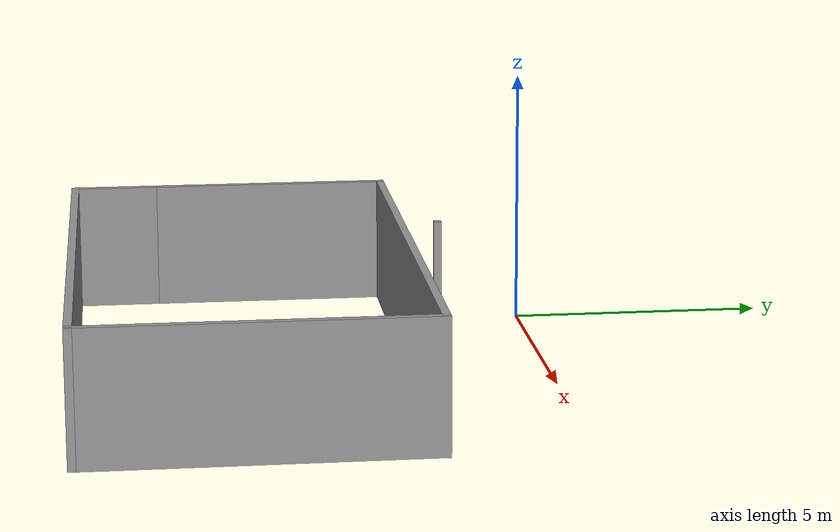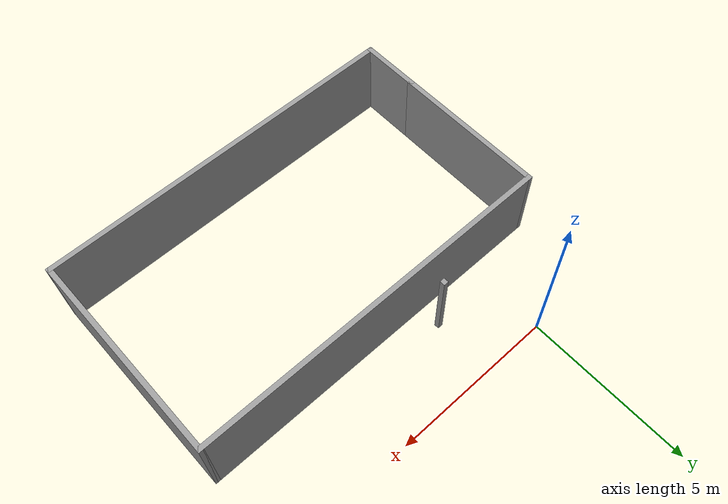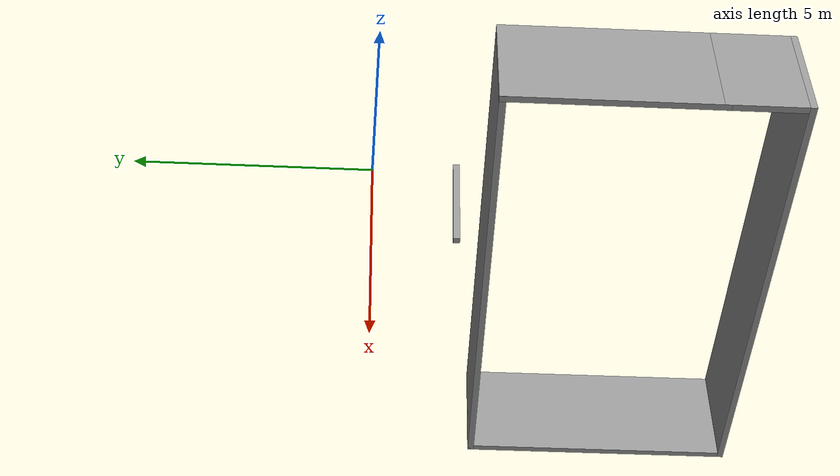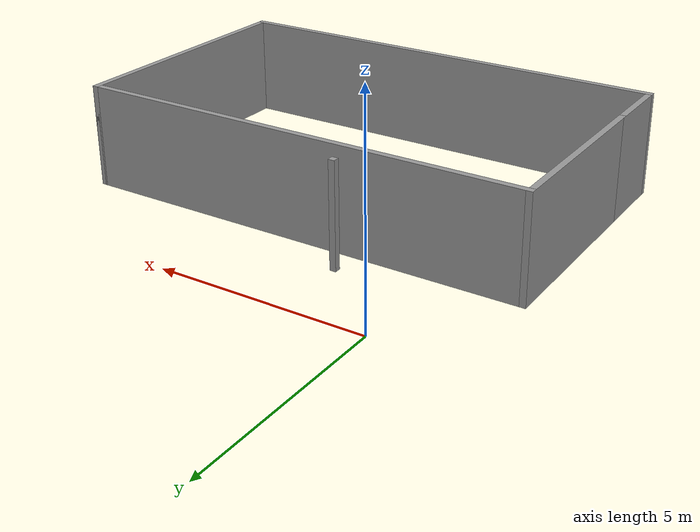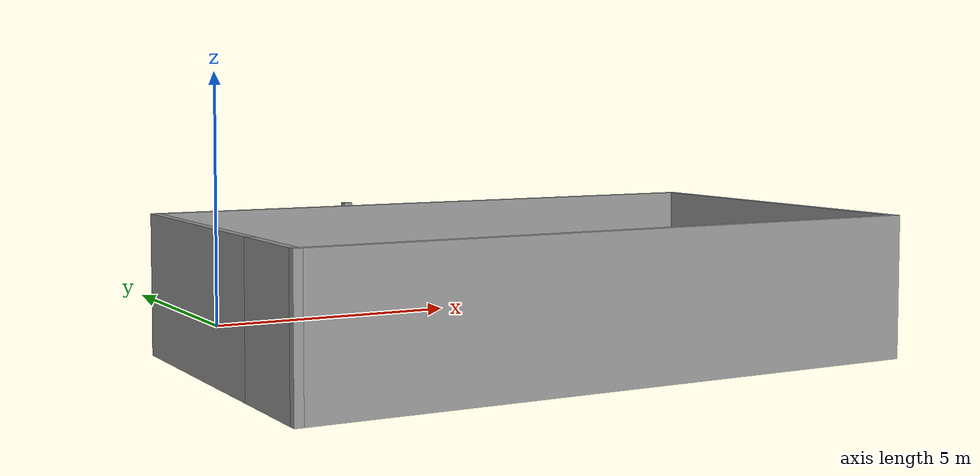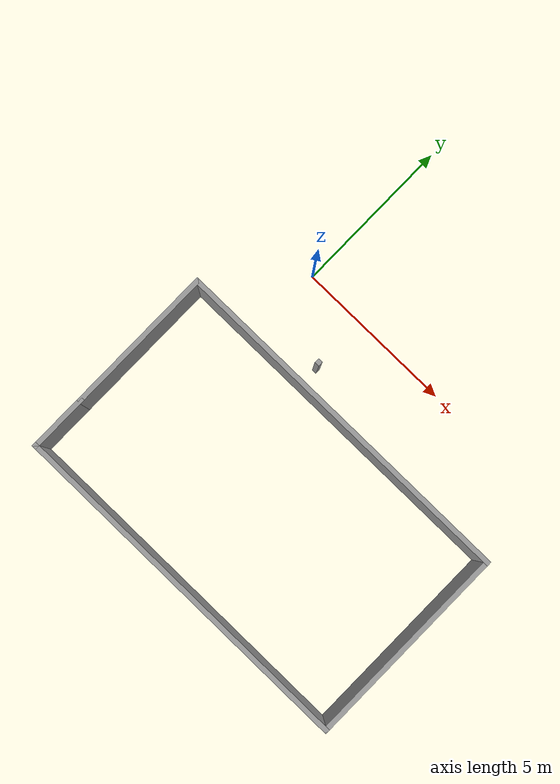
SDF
<?xml version='1.0'?>
<sdf version='1.7'>
  <model name='walls'>
    <pose>3.54161 -4.51656 0 0 -0 0</pose>
    <link name='Wall_10'>
      <collision name='Wall_10_Collision'>
        <geometry>
          <box>
            <size>11.25 0.15 2.5</size>
          </box>
        </geometry>
        <pose>0 0 1.25 0 -0 0</pose>
      </collision>
      <visual name='Wall_10_Visual'>
        <pose>0 0 1.25 0 -0 0</pose>
        <geometry>
          <box>
            <size>11.25 0.15 2.5</size>
          </box>
        </geometry>
        <material>
          <script>
            <uri>file://media/materials/scripts/gazebo.material</uri>
            <name>Gazebo/Grey</name>
          </script>
          <ambient>1 1 1 1</ambient>
        </material>
        <meta>
          <layer>0</layer>
        </meta>
      </visual>
      <pose>0 -4.44156 0 0 -0 3.14159</pose>
    </link>
    <link name='Wall_11'>
      <collision name='Wall_11_Collision'>
        <geometry>
          <box>
            <size>1.9 0.15 2.5</size>
          </box>
        </geometry>
        <pose>0 0 1.25 0 -0 0</pose>
      </collision>
      <visual name='Wall_11_Visual'>
        <pose>0 0 1.25 0 -0 0</pose>
        <geometry>
          <box>
            <size>1.9 0.15 2.5</size>
          </box>
        </geometry>
        <material>
          <script>
            <uri>file://media/materials/scripts/gazebo.material</uri>
            <name>Gazebo/Grey</name>
          </script>
          <ambient>1 1 1 1</ambient>
        </material>
        <meta>
          <layer>0</layer>
        </meta>
      </visual>
      <pose>-5.55 -3.56656 0 0 -0 1.5708</pose>
    </link>
    <link name='Wall_3'>
      <collision name='Wall_3_Collision'>
        <geometry>
          <box>
            <size>0.15 0.15 2.5</size>
          </box>
        </geometry>
        <pose>0 0 1.25 0 -0 0</pose>
      </collision>
      <visual name='Wall_3_Visual'>
        <pose>0 0 1.25 0 -0 0</pose>
        <geometry>
          <box>
            <size>0.15 0.15 2.5</size>
          </box>
        </geometry>
        <material>
          <script>
            <uri>file://media/materials/scripts/gazebo.material</uri>
            <name>Gazebo/Grey</name>
          </script>
          <ambient>1 1 1 1</ambient>
        </material>
        <meta>
          <layer>0</layer>
        </meta>
      </visual>
      <pose>-1.58161 2.63656 0 0 -0 0</pose>
    </link>
    <link name='Wall_7'>
      <collision name='Wall_7_Collision'>
        <geometry>
          <box>
            <size>4.75 0.15 2.5</size>
          </box>
        </geometry>
        <pose>0 0 1.25 0 -0 0</pose>
      </collision>
      <visual name='Wall_7_Visual'>
        <pose>0 0 1.25 0 -0 0</pose>
        <geometry>
          <box>
            <size>4.75 0.15 2.5</size>
          </box>
        </geometry>
        <material>
          <script>
            <uri>file://media/materials/scripts/gazebo.material</uri>
            <name>Gazebo/Grey</name>
          </script>
          <ambient>1 1 1 1</ambient>
        </material>
        <meta>
          <layer>0</layer>
        </meta>
      </visual>
      <pose>-5.55 -0.391555 0 0 -0 1.5708</pose>
    </link>
    <link name='Wall_8'>
      <collision name='Wall_8_Collision'>
        <geometry>
          <box>
            <size>11.25 0.15 2.5</size>
          </box>
        </geometry>
        <pose>0 0 1.25 0 -0 0</pose>
      </collision>
      <visual name='Wall_8_Visual'>
        <pose>0 0 1.25 0 -0 0</pose>
        <geometry>
          <box>
            <size>11.25 0.15 2.5</size>
          </box>
        </geometry>
        <material>
          <script>
            <uri>file://media/materials/scripts/gazebo.material</uri>
            <name>Gazebo/Grey</name>
          </script>
          <ambient>1 1 1 1</ambient>
        </material>
        <meta>
          <layer>0</layer>
        </meta>
      </visual>
      <pose>0 1.90844 0 0 -0 0</pose>
    </link>
    <link name='Wall_9'>
      <collision name='Wall_9_Collision'>
        <geometry>
          <box>
            <size>6.5 0.15 2.5</size>
          </box>
        </geometry>
        <pose>0 0 1.25 0 -0 0</pose>
      </collision>
      <visual name='Wall_9_Visual'>
        <pose>0 0 1.25 0 -0 0</pose>
        <geometry>
          <box>
            <size>6.5 0.15 2.5</size>
          </box>
        </geometry>
        <material>
          <script>
            <uri>file://media/materials/scripts/gazebo.material</uri>
            <name>Gazebo/Grey</name>
          </script>
          <ambient>1 1 1 1</ambient>
        </material>
        <meta>
          <layer>0</layer>
        </meta>
      </visual>
      <pose>5.55 -1.26656 0 0 -0 -1.5708</pose>
    </link>
    <static>1</static>
  </model>
</sdf>
